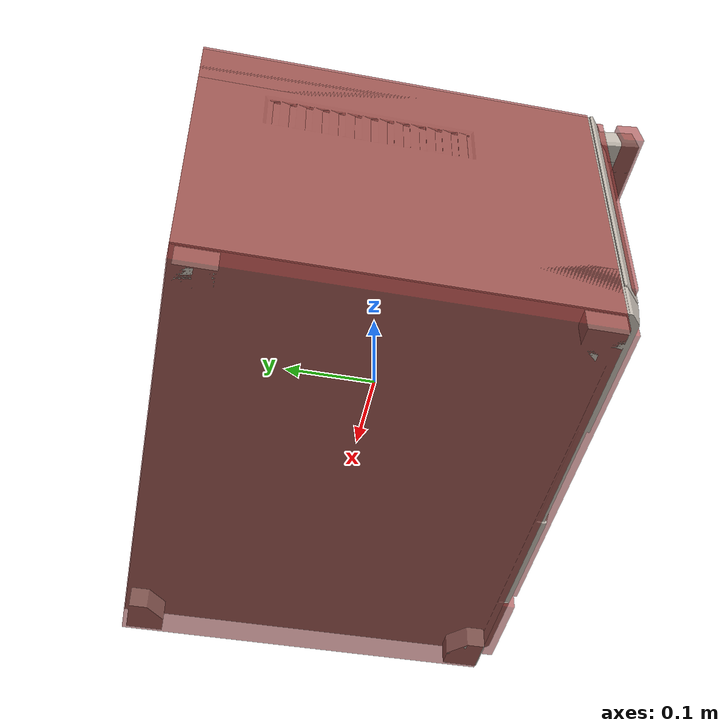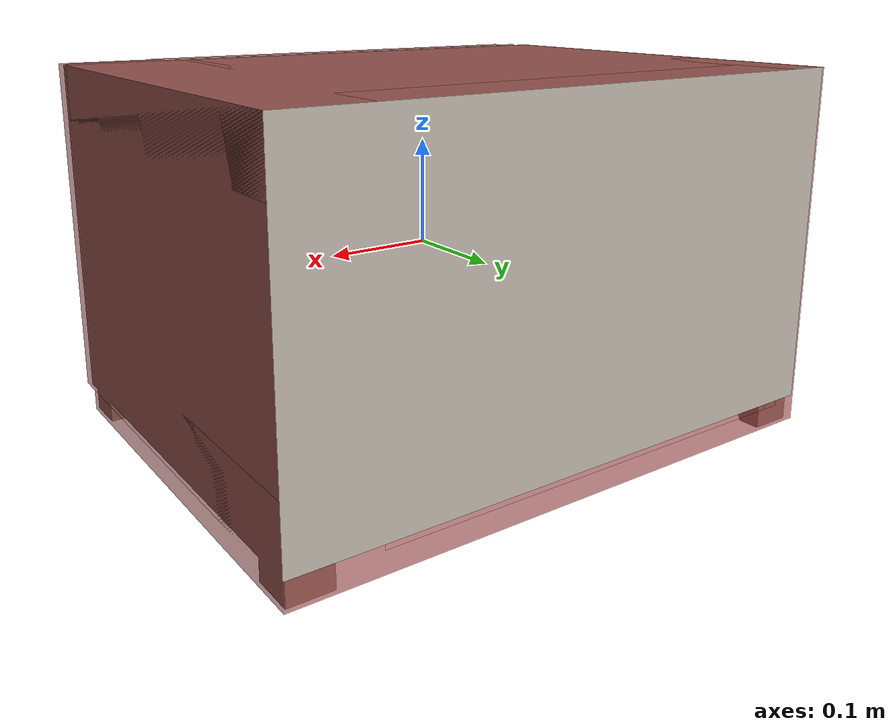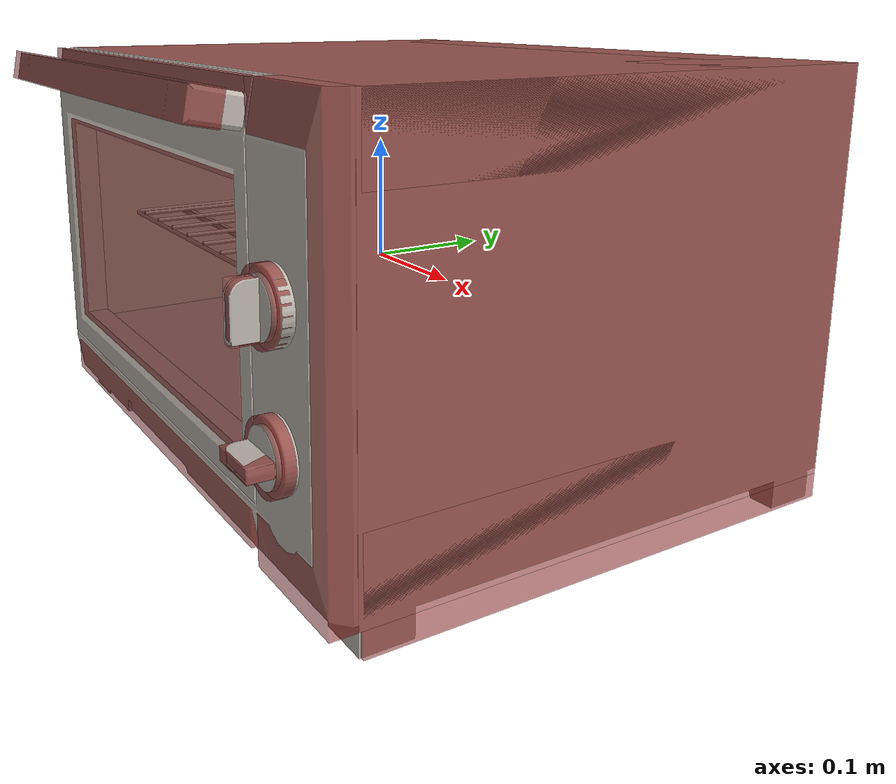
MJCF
<?xml version='1.0' encoding='UTF-8'?>
<mujoco model="model">
  <option timestep="0.002" gravity="0.0 0.0 -9.81"/>
  <compiler angle="radian"/>
  <asset>
    <mesh file="visuals/door.obj" name="door_vis"/>
    <mesh file="visuals/knob_temp.obj" name="knob_temp_vis"/>
    <mesh file="visuals/knob_time.obj" name="knob_time_vis"/>
    <mesh file="visuals/rack0.obj" name="rack0_vis"/>
    <mesh file="visuals/Body001.obj" name="Body001_vis"/>
    <mesh file="visuals/window.obj" name="window_vis"/>
    <texture file="visuals/T_BC001.png" name="Body001_material" type="2d"/>
    <material name="Body001_material" rgba="1 1 1 1.0" texture="Body001_material" shininess="0.1" specular="2"/>
    <texture file="visuals/T_BC001.png" name="door_material" type="2d"/>
    <material name="door_material" rgba="1 1 1 1.0" texture="door_material" shininess="0.1" specular="2"/>
    <texture file="visuals/T_BC001.png" name="window_material" type="2d"/>
    <material name="window_material" rgba="1 1 1 0.860534131526947" texture="window_material" shininess="0.5" specular="0.3103448502657381"/>
    <texture file="visuals/T_BC001.png" name="knob_temp_material" type="2d"/>
    <material name="knob_temp_material" rgba="1 1 1 1.0" texture="knob_temp_material" shininess="0.5" specular="0.3103448502657381"/>
    <texture file="visuals/T_BC001.png" name="knob_time_material" type="2d"/>
    <material name="knob_time_material" rgba="1 1 1 1.0" texture="knob_time_material" shininess="0.5" specular="0.3103448502657381"/>
    <texture file="visuals/T_BC001.png" name="rack0_material" type="2d"/>
    <material name="rack0_material" rgba="1 1 1 1.0" texture="rack0_material" shininess="0.1" specular="4"/>
  </asset>
  <default>
    <default class="visual">
      <geom conaffinity="0" contype="0" group="1" type="mesh"/>
    </default>
    <default class="collision">
      <geom group="0" rgba="0.5 0 0 0.5"/>
    </default>
    <default class="spawn">
      <geom group="0" rgba="1 1 1 0.5" contype="0" conaffinity="0"/>
      <site group="0" rgba="1 1 1 0.5"/>
    </default>
    <default class="region">
      <geom group="1" conaffinity="0" contype="0" rgba="0 1 0 0"/>
    </default>
  </default>
  <worldbody>
    <body>
      <body name="object">
        <geom mesh="Body001_vis" type="mesh" solimp="0.998 0.998 0.001" solref="0.001 1" friction="0.95 0.3 0.1" class="visual" material="Body001_material"/>
        <geom class="collision" type="box" pos="0.00000029 0.02940228 0.14274825" size="0.2772040069103241 0.2074829488992691 0.02837187796831131" quat="1.0 0.0 0.0 0.0"/>
        <geom class="collision" type="box" pos="0.00000029 0.02940222 -0.12882690" size="0.2772040069103241 0.20748287439346313 0.04229314252734184" quat="1.0 0.0 0.0 0.0"/>
        <geom class="collision" type="box" pos="0.22769840 0.01775921 0.01006395" size="0.049505919218063354 0.219125896692276 0.16105617582798004" quat="1.0 0.0 0.0 0.0"/>
        <geom class="collision" type="box" pos="-0.25308038 0.02939473 0.01006395" size="0.02412334829568863 0.20749036967754364 0.16105616092681885" quat="1.0 0.0 0.0 0.0"/>
        <geom class="collision" type="box" pos="-0.01934959 0.20607949 0.01006396" size="0.21508970856666565 0.030805738642811775 0.16105619072914124" quat="1.0 0.0 0.0 0.0"/>
        <geom class="collision" type="box" pos="-0.03966753 -0.17044822 -0.12835738" size="0.20798663794994354 0.03132147341966629 0.01409910712391138" quat="1.0 0.0 0.0 0.0"/>
        <geom class="collision" type="box" pos="0.18472062 0.00462812 0.01006395" size="0.031199544668197632 0.17710693180561066 0.16105616092681885" quat="1.0 0.0 0.0 0.0"/>
        <geom class="collision" type="box" pos="0.17869199 0.02939473 0.01006395" size="0.024206358939409256 0.20749036967754364 0.16105616092681885" quat="1.0 0.0 0.0 0.0"/>
        <body name="door">
          <joint axis="1.0 0.0 0.0" pos="-0.05080156 -0.20119708 -0.10691456" limited="true" name="door_joint" range="0.0 1.4707963267948966" type="hinge" damping="1" frictionloss="1" armature=".01" stiffness="0.05"/>
          <geom mesh="door_vis" type="mesh" solimp="0.998 0.998 0.001" solref="0.001 1" friction="0.95 0.3 0.1" class="visual" material="door_material"/>
          <geom class="collision" type="box" pos="-0.04949232 -0.19486925 0.03457276" size="0.21992427110671997 0.0032664891332387924 0.13654744625091553" quat="1.0 0.0 0.0 0.0" name="door_main"/>
          <geom class="collision" type="box" pos="-0.04949232 -0.22548875 0.15452810" size="0.2255878895521164 0.011734182946383953 0.012705291621387005" quat="0.9953007102012634 -0.09683231264352798 2.150109425927051e-17 8.331292548671183e-24" name="door_handle_main"/>
          <body name="window">
            <geom mesh="window_vis" type="mesh" solimp="0.998 0.998 0.001" solref="0.001 1" friction="0.95 0.3 0.1" class="visual" material="window_material"/>
            <geom class="collision" type="box" pos="-0.03735789 -0.19739124 0.01262982" size="0.1911514401435852 0.0027261930517852306 0.09558159112930298" quat="1.0 0.0 0.0 0.0"/>
          </body>
        </body>
        <body name="knob_temp">
          <joint axis="0.0 1.0 0.0" pos="0.21711299 -0.21793650 0.04029308" limited="true" name="knob_temp_joint" range="0.0 4.572762640225143" type="hinge" damping="0.05" armature="1" frictionloss="0.75"/>
          <geom mesh="knob_temp_vis" type="mesh" solimp="0.998 0.998 0.001" solref="0.001 1" friction="0.95 0.3 0.1" class="visual" material="knob_temp_material"/>
          <geom class="collision" type="cylinder" pos="0.21679983 -0.20929831 0.04037571" size="0.026287123560905457 0.005400040186941624" quat="0.7071067094802856 0.7071068286895752 0.0 0.0" friction="100 0.5 0.01"/>
          <geom class="collision" type="box" pos="0.21702430 -0.22339634 0.03998877" size="0.00500000175088644 0.00982767716050148 0.020134959369897842" quat="1.0 0.0 0.0 0.0" name="knob_temp_main" friction="100 0.5 0.01"/>
        </body>
        <body name="knob_time">
          <joint axis="0.0 1.0 0.0" pos="0.21711299 -0.21736650 -0.05475247" limited="true" name="knob_time_joint" range="0.0 5.323254218582705" type="hinge" damping="0.05" armature="1" frictionloss="0.75"/>
          <geom mesh="knob_time_vis" type="mesh" solimp="0.998 0.998 0.001" solref="0.001 1" friction="0.95 0.3 0.1" class="visual" material="knob_time_material"/>
          <geom class="collision" type="cylinder" pos="0.21742839 -0.20879443 -0.05469638" size="0.026215171441435814 0.005385259166359901" quat="0.7071067094802856 0.7071068286895752 0.0 0.0" friction="100 0.5 0.01"/>
          <geom class="collision" type="box" pos="0.21734703 -0.22339634 -0.05451279" size="0.020134959369897842 0.00982767716050148 0.004999999888241291" quat="1.0 0.0 0.0 0.0" name="knob_time_main" friction="100 0.5 0.01"/>
        </body>
        <body name="rack0">
          <geom class="region" name="reg_rack0" type="box" pos="-0.038714845 -0.008722844999999993 0.06747099" size="0.168764615 0.13757238500000002 0.044613"/>
          <joint axis="0.0 -1.0 0.0" pos="-0.03880392 -0.00879326 0.01894255" limited="true" name="rack0_joint" range="0.0 0.2" type="slide" damping="1" frictionloss="1" armature=".01" stiffness="0.05"/>
          <geom mesh="rack0_vis" type="mesh" solimp="0.998 0.998 0.001" solref="0.001 1" friction="0.95 0.3 0.1" class="visual" material="rack0_material"/>
          <geom class="collision" type="box" pos="-0.03862628 -0.00876568 0.01881953" size="0.16946569085121155 0.13897036015987396 0.004970031790435314" quat="1.0 0.0 0.0 0.0"/>
        </body>
        <geom class="region" name="reg_main" type="box" pos="3.000000000086267e-07 0.017557729999999994 -2.000000000335067e-08" size="0.27820404 0.22032751 0.17212001999999998"/>
      </body>
    </body>
  </worldbody>
  <actuator>
    <motor name="door_joint_actuator" joint="door_joint" gear="50"/>
    <motor name="knob_temp_joint_actuator" joint="knob_temp_joint" gear="50"/>
    <motor name="knob_time_joint_actuator" joint="knob_time_joint" gear="50"/>
    <motor name="rack0_joint_actuator" joint="rack0_joint" gear="50"/>
  </actuator>
</mujoco>
